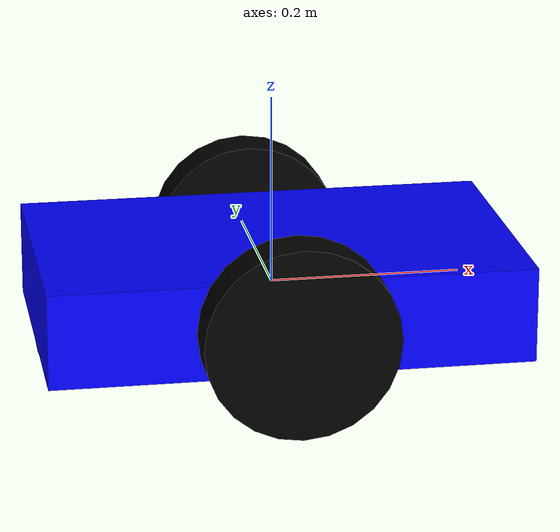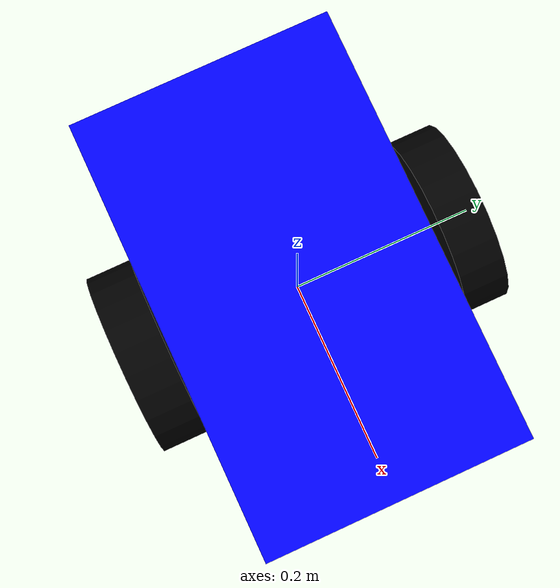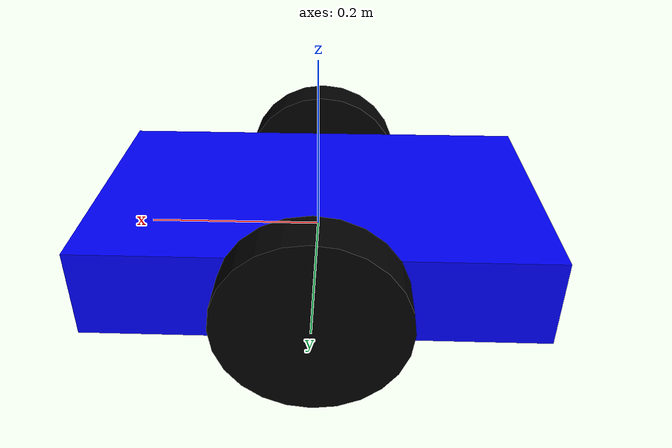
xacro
<?xml version="1.0"?>
<robot name="mpc_robot" xmlns:xacro="http://ros.org/wiki/xacro">

  <link name="base_link">
    <visual>
      <geometry>
        <box size="0.5 0.3 0.1"/>
      </geometry>
      <material name="blue"><color rgba="0 0 1 1"/></material>
    </visual>
    <collision>
      <geometry>
        <box size="0.5 0.3 0.1"/>
      </geometry>
    </collision>
    <inertial>
      <mass value="5.0"/>
      <inertia ixx="0.1" ixy="0" ixz="0" iyy="0.1" iyz="0" izz="0.1"/>
    </inertial>
  </link>

  <link name="left_wheel">
    <visual>
      <geometry><cylinder radius="0.1" length="0.05"/></geometry>
      <material name="black"><color rgba="0 0 0 1"/></material>
    </visual>
    <collision>
      <geometry><cylinder radius="0.1" length="0.05"/></geometry>
    </collision>
    <inertial>
      <mass value="1.0"/>
      <inertia ixx="0.01" ixy="0" ixz="0" iyy="0.01" iyz="0" izz="0.01"/>
    </inertial>
  </link>

  <joint name="left_wheel_joint" type="continuous">
    <parent link="base_link"/>
    <child link="left_wheel"/>
    <origin xyz="0 0.175 0" rpy="-1.5708 0 0"/> <axis xyz="0 0 1"/>
  </joint>

  <link name="right_wheel">
    <visual>
      <geometry><cylinder radius="0.1" length="0.05"/></geometry>
      <material name="black"><color rgba="0 0 0 1"/></material>
    </visual>
    <collision>
      <geometry><cylinder radius="0.1" length="0.05"/></geometry>
    </collision>
    <inertial>
      <mass value="1.0"/>
      <inertia ixx="0.01" ixy="0" ixz="0" iyy="0.01" iyz="0" izz="0.01"/>
    </inertial>
  </link>

  <joint name="right_wheel_joint" type="continuous">
    <parent link="base_link"/>
    <child link="right_wheel"/>
    <origin xyz="0 -0.175 0" rpy="-1.5708 0 0"/>
    <axis xyz="0 0 1"/>
  </joint>

  <link name="caster_wheel">
    <visual>
      <geometry><sphere radius="0.05"/></geometry>
    </visual>
    <collision>
      <geometry><sphere radius="0.05"/></geometry>
    </collision>
    <inertial>
      <mass value="0.5"/>
      <inertia ixx="0.001" ixy="0" ixz="0" iyy="0.001" iyz="0" izz="0.001"/>
    </inertial>
  </link>
  <joint name="caster_joint" type="fixed">
    <parent link="base_link"/>
    <child link="caster_wheel"/>
    <origin xyz="0.2 0 -0.05"/>
  </joint>

  <link name="rear_caster_wheel">
    <visual>
      <geometry><sphere radius="0.05"/></geometry>
      <material name="black"/>
    </visual>
    <collision>
      <geometry><sphere radius="0.05"/></geometry>
    </collision>
    <inertial>
      <mass value="0.5"/>
      <inertia ixx="0.001" ixy="0" ixz="0" iyy="0.001" iyz="0" izz="0.001"/>
    </inertial>
  </link>

  <joint name="rear_caster_joint" type="fixed">
    <parent link="base_link"/>
    <child link="rear_caster_wheel"/>
    <origin xyz="-0.2 0 -0.05"/> </joint>

  <gazebo>
    <plugin filename="libgz-sim-diff-drive-system.so" name="gz::sim::systems::DiffDrive">
      <left_joint>left_wheel_joint</left_joint>
      <right_joint>right_wheel_joint</right_joint>
      <wheel_separation>0.35</wheel_separation>
      <wheel_radius>0.1</wheel_radius>
      <topic>cmd_vel</topic> <odom_topic>odom</odom_topic> <frame_id>odom</frame_id>
      <child_frame_id>base_link</child_frame_id>
      <odom_publish_frequency>20</odom_publish_frequency> </plugin>
  </gazebo>

</robot>
